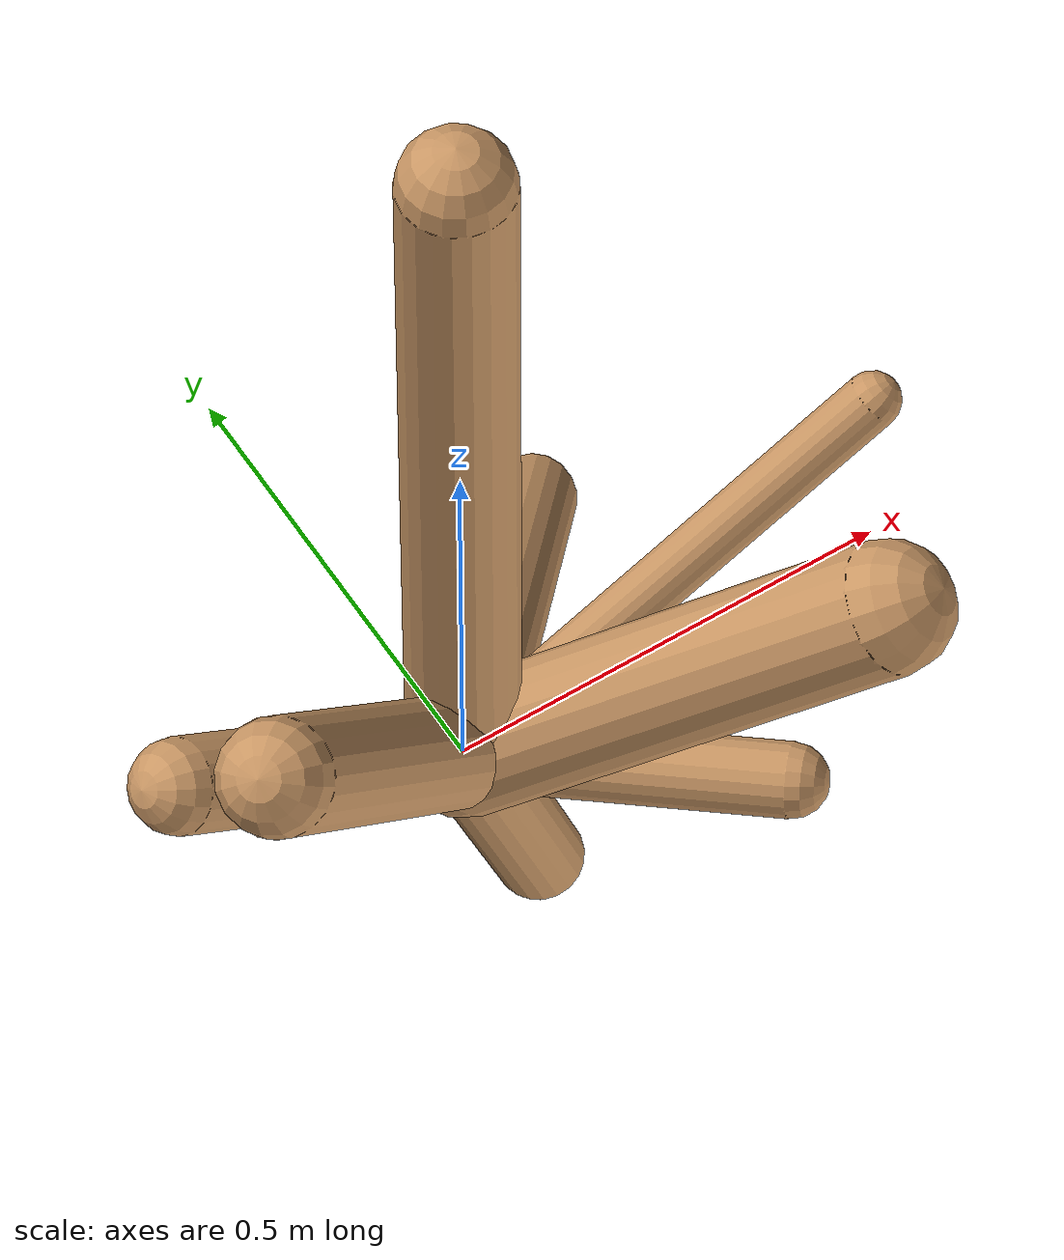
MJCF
<!--
                    joint_number: 7
                    -->
                    <mujoco model="randomrobot">
                        <compiler angle="degree" coordinate="global" inertiafromgeom="true"/>
                        <default>
                        <joint armature="0.01" damping=".1" limited="true"/>
                        <geom conaffinity="0" condim="3" contype="1" density="1000" friction="0.8 .1 .1" rgba="0.8 0.6 .4 1"/>
                        </default>
                        <option integrator="RK4" timestep="0.002"/>
                        <worldbody>
                    <body name='torso' pos='0.00 0.00 1.17'><geom fromto='0 0 0 0.00 0.00 1.00' name='torso_geom' size='0.06' type='capsule'/><inertial mass='0.3'/><body name='L0_D1' pos='0.00 0.00 0.23'><joint axis='1 0 0' name='L0_D1_joint' pos='0 0 0' range='86.78 136.09' type='hinge'/><geom fromto='0 0 0 0.33 -0.27 0.35' name='L0_D1_geom' size='0.07' type='capsule'/><inertial mass='0.3'/></body><body name='L1_D1' pos='0.00 0.00 0.46'><joint axis='0 0 1' name='L1_D1_joint' pos='0 0 0' range='129.98 147.79' type='hinge'/><geom fromto='0 0 0 0.45 -0.06 0.36' name='L1_D1_geom' size='0.03' type='capsule'/><inertial mass='0.3'/><body name='L2_D0' pos='0.18 -0.02 0.14'><joint axis='0 0 1' name='L2_D0_joint' pos='0 0 0' range='38.46 79.13' type='hinge'/><geom fromto='0 0 0 -0.34 -0.01 0.24' name='L2_D0_geom' size='0.05' type='capsule'/><inertial mass='0.3'/></body></body><body name='L3_D1' pos='0.00 0.00 0.35'><joint axis='1 0 0' name='L3_D1_joint' pos='0 0 0' range='42.82 50.25' type='hinge'/><geom fromto='0 0 0 0.42 0.53 -0.55' name='L3_D1_geom' size='0.05' type='capsule'/><inertial mass='0.3'/></body><body name='L4_D1' pos='0.00 0.00 0.04'><joint axis='1 0 0' name='L4_D1_joint' pos='0 0 0' range='8.08 173.58' type='hinge'/><geom fromto='0 0 0 0.25 -0.23 0.04' name='L4_D1_geom' size='0.04' type='capsule'/><inertial mass='0.3'/><body name='L5_D0' pos='0.04 -0.04 0.01'><joint axis='0 1 0' name='L5_D0_joint' pos='0 0 0' range='5.01 52.74' type='hinge'/><geom fromto='0 0 0 -0.34 -0.21 0.53' name='L5_D0_geom' size='0.06' type='capsule'/><inertial mass='0.3'/></body><body name='L6_D0' pos='0.04 -0.04 0.01'><joint axis='1 0 0' name='L6_D0_joint' pos='0 0 0' range='155.75 166.11' type='hinge'/><geom fromto='0 0 0 0.20 0.17 -0.62' name='L6_D0_geom' size='0.05' type='capsule'/><inertial mass='0.3'/></body></body></body>
                        </worldbody>
                    </mujoco>
